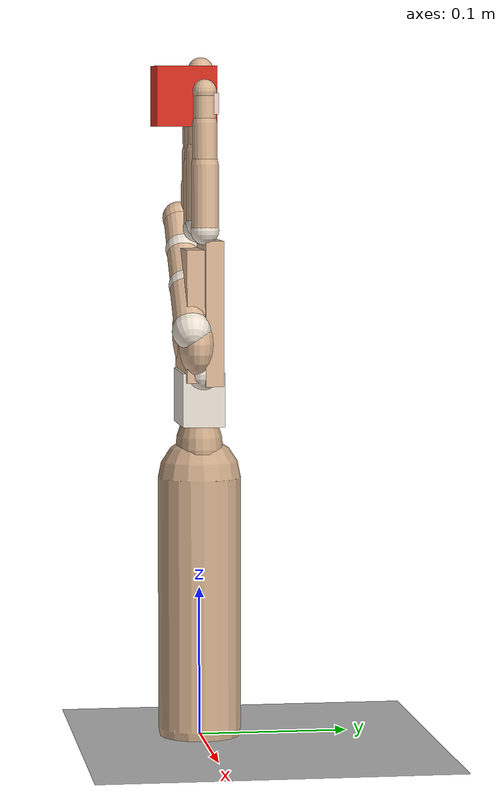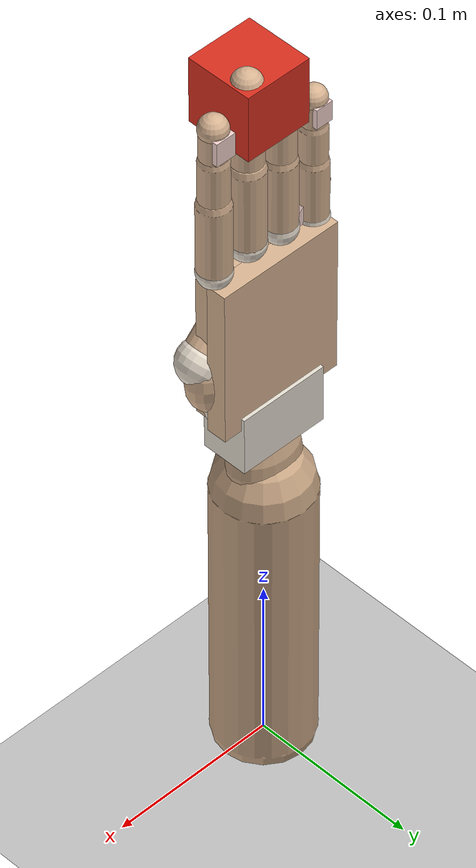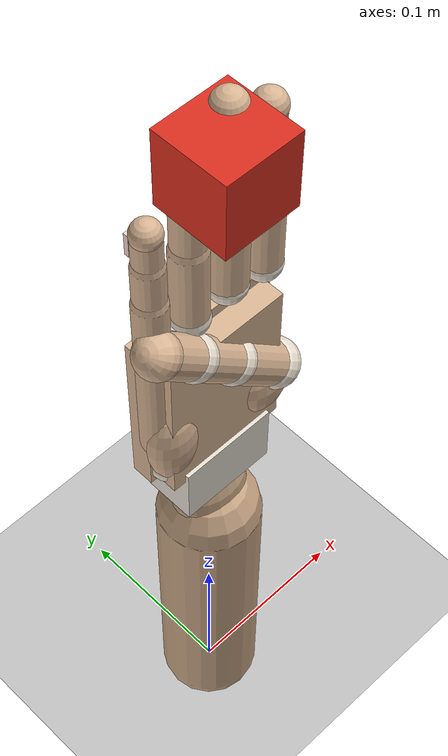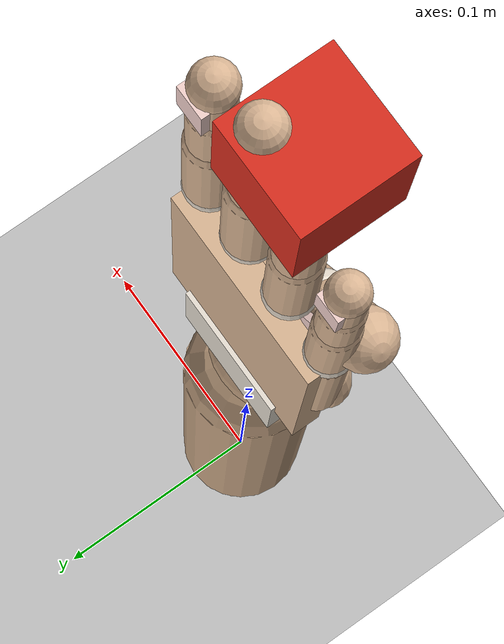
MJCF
<mujoco model="right_human_hand">

  <compiler angle="radian" autolimits="true"/>

  <option cone="elliptic" impratio="10" timestep="0.002" gravity="0 0 -9.81"/>

  <visual>
    <global offwidth="1920" offheight="1080"/>
    <quality shadowsize="4096"/>
    <headlight diffuse="0.6 0.6 0.6" ambient="0.3 0.3 0.3" specular="0.1 0.1 0.1"/>
    <rgba haze="0.15 0.25 0.35 1"/>
  </visual>

  <!-- ===================================================================
       ASSETS
       =================================================================== -->
  <asset>
    <texture name="floor_tex" type="2d" builtin="checker"
             rgb1="0.82 0.82 0.82" rgb2="0.67 0.67 0.67"
             width="512" height="512"/>
    <material name="floor_mat" texture="floor_tex" texrepeat="6 6"
              specular="0.1" shininess="0.05"/>
    <material name="cube_mat"  specular="0.4" shininess="0.3"
              rgba="0.85 0.18 0.12 1"/>
    <material name="skin"         specular="0.12" shininess="0.08"
              rgba="0.847 0.706 0.576 1"/>
    <material name="knuckle"      specular="0.25" shininess="0.15"
              rgba="0.920 0.878 0.820 1"/>
    <material name="nail"         specular="0.45" shininess="0.35"
              rgba="0.950 0.820 0.800 1"/>
    <material name="forearm_skin" specular="0.08" shininess="0.05"
              rgba="0.780 0.647 0.518 1"/>
    <material name="wrist_bone"   specular="0.30" shininess="0.20"
              rgba="0.900 0.870 0.820 1"/>
  </asset>

  <default>
    <default class="right_hand">
      <joint damping="0.1" armature="0.001" frictionloss="0.005"/>
      <geom contype="1" conaffinity="1" solimp="0.9 0.99 0.001" solref="0.01 1"/>

      <!-- WRIST flexion/extension (+/-Y) -->
      <default class="wrist_y">
        <joint axis="0 1 0" range="-1.2217 1.3963" damping="0.5"/>
        <position kp="15" ctrlrange="-1.2217 1.3963" forcerange="-20 20"/>
      </default>
      <!-- WRIST radial/ulnar deviation (+/-X) -->
      <default class="wrist_x">
        <joint axis="1 0 0" range="-0.3491 0.5236" damping="0.5"/>
        <position kp="12" ctrlrange="-0.3491 0.5236" forcerange="-12 12"/>
      </default>

      <!-- THUMB CMC abduction/adduction -->
      <default class="thbase">
        <joint axis="0 0 1" range="-0.5236 0.8727" damping="0.1"/>
        <position kp="2.0" ctrlrange="-0.5236 0.8727" forcerange="-5 5"/>
      </default>
      <!-- THUMB CMC flexion -->
      <default class="thproximal">
        <joint axis="0 1 0" range="0 1.0472" damping="0.1"/>
        <position kp="2.5" ctrlrange="0 1.0472" forcerange="-5 5"/>
      </default>
      <!-- THUMB MCP twist -->
      <default class="thhub">
        <joint axis="1 0 0" range="-0.1745 0.1745" damping="0.05"/>
        <position kp="1.5" ctrlrange="-0.1745 0.1745" forcerange="-3 3"/>
      </default>
      <!-- THUMB MCP flexion -->
      <default class="thmiddle">
        <joint axis="0 1 0" range="-0.2618 1.0472" damping="0.1"/>
        <position kp="3.0" ctrlrange="-0.2618 1.0472" forcerange="-5 5"/>
      </default>
      <!-- THUMB IP flexion -->
      <default class="thdistal">
        <joint axis="0 1 0" range="-0.0873 1.3963" damping="0.08"/>
        <position kp="2.0" ctrlrange="-0.0873 1.3963" forcerange="-4 4"/>
      </default>

      <!-- FINGER MCP abduction/adduction (side spread) -->
      <default class="knuckle">
        <joint axis="1 0 0" range="-0.3491 0.3491" damping="0.05"/>
        <position kp="1.5" ctrlrange="-0.3491 0.3491" forcerange="-3 3"/>
      </default>
      <!-- FINGER MCP flexion/extension -->
      <default class="proximal">
        <joint axis="0 1 0" range="-0.2618 1.5708" damping="0.1"/>
        <position kp="3.0" ctrlrange="-0.2618 1.5708" forcerange="-6 6"/>
      </default>
      <!-- FINGER PIP flexion (also drives DIP via tendon) -->
      <default class="middle_pip">
        <joint axis="0 1 0" range="0 2.0944" damping="0.08"/>
        <position kp="2.5" ctrlrange="0 2.0944" forcerange="-5 5"/>
      </default>
      <!-- FINGER DIP flexion (driven by tendon, not directly actuated) -->
      <default class="middle_dip">
        <joint axis="0 1 0" range="0 1.3963" damping="0.06"/>
      </default>
      <!-- LITTLE FINGER metacarpal arch — axis X flipped for mirrored hand -->
      <default class="metacarpal">
        <joint axis="-0.573576 0 0.819152" range="0 0.6981" damping="0.05"/>
        <position kp="1.5" ctrlrange="0 0.6981" forcerange="-3 3"/>
      </default>
    </default>
  </default>

  <worldbody>

    <!-- LIGHTS -->
    <light name="key"  pos="0.5 -0.5 1.5" dir="-0.3  0.3 -1"
           diffuse="0.8 0.8 0.8" specular="0.3 0.3 0.3" castshadow="true"/>
    <light name="fill" pos="-0.5 0.5 1.0" dir=" 0.3 -0.3 -1"
           diffuse="0.4 0.4 0.5" specular="0 0 0" castshadow="false"/>

    <!-- FLOOR -->
    <geom name="floor" type="plane" size="2 2 0.1"
          material="floor_mat" contype="1" conaffinity="1"/>

    <!-- CUBE — free body, starts just above open palm centre.
         Palm centre is ~z=0.247+0.040=0.287 above world origin;
         cube half-size=0.02 so bottom face at z=0.41 clears the palm.  -->
    <body name="cube" pos="0.0 -0.01 0.43">
      <freejoint name="cube_joint"/>
      <inertial mass="0.05" pos="0 0 0"
                diaginertia="8.33e-06 8.33e-06 8.33e-06"/>
      <geom name="cube_geom" type="box" size="0.020 0.020 0.020"
            material="cube_mat"
            friction="1.5 0.05 0.005"
            solimp="0.95 0.99 0.001" solref="0.008 1"/>
    </body>

    <body name="rh_forearm" childclass="right_hand" pos="0 0 0">
      <inertial mass="3.0" pos="0 0 0.09" diaginertia="0.0138 0.0138 0.00744"/>
      <geom name="forearm_main"    type="capsule" size="0.028 0.085"
            pos="0 0 0.09"  material="forearm_skin"/>
      <geom name="forearm_taper"   type="ellipsoid" size="0.022 0.016 0.025"
            pos="0 0 0.195" material="forearm_skin"/>

      <body name="rh_wrist" pos="0 0 0.213">
        <inertial mass="0.12" pos="0 0 0.016"
                  diaginertia="7.0e-05 4.8e-05 3.8e-05"/>
        <!-- FIX: WRJ2 (flexion) lives on rh_wrist, not on rh_palm -->
        <joint name="rh_WRJ2" class="wrist_y"/>
        <geom name="wrist_block" type="box"    size="0.027 0.014 0.018"
              pos="0 0 0.016" material="wrist_bone"/>
        <geom name="wrist_r"     type="sphere" size="0.011"
              pos="-0.026 0 0.034" material="knuckle"/>
        <geom name="wrist_l"     type="sphere" size="0.011"
              pos=" 0.026 0 0.034" material="knuckle"/>

        <body name="rh_palm" pos="0 0 0.034">
          <!-- Inertia corrected: palm 76mm wide (X), 14mm thick (Y), 96mm tall (Z)
               Ixx=m/12*(Y²+Z²)=0.00027, Iyy=m/12*(X²+Z²)=0.00044, Izz=m/12*(X²+Y²)=0.00017 -->
          <inertial mass="0.35" pos="0 0 0.040"
                    diaginertia="0.00027 0.00044 0.00017"/>
          <!-- FIX: WRJ1 (deviation) lives on rh_palm -->
          <joint name="rh_WRJ1" class="wrist_x"/>
          <!-- Palm slab -->
          <geom name="palm_back"   type="box" size="0.038 0.006 0.048"
                pos="0 0.006 0.040" material="skin"/>
          <geom name="palm_front"  type="box" size="0.034 0.008 0.044"
                pos="0 -0.004 0.038" material="skin"/>
          <!-- Thenar (thumb side) — thumb is on +X for right hand palm-up -->
          <geom name="thenar"      type="ellipsoid" size="0.018 0.012 0.022"
                pos=" 0.028 -0.005 0.020" material="skin"/>
          <!-- Hypothenar (pinky side) — pinky is on -X -->
          <geom name="hypothenar"  type="ellipsoid" size="0.014 0.010 0.026"
                pos="-0.028 -0.005 0.024" material="skin"/>

          <body name="rh_ffknuckle" pos="0.033 0 0.095">
            <inertial mass="0.009" pos="0 0 0"
                      diaginertia="3.5e-07 2.8e-07 2.8e-07"/>
            <joint name="rh_FFJ4" class="knuckle"/>
            <geom name="ff_kn" type="sphere" size="0.0095" material="knuckle"/>
            <body name="rh_ffproximal" pos="0 0 0">
              <inertial mass="0.032" pos="0 0 0.0225"
                        diaginertia="1.1e-05 1.0e-05 2.0e-06"/>
              <joint name="rh_FFJ3" class="proximal"/>
              <geom name="ff_p"   type="capsule" size="0.0092 0.0205"
                    pos="0 0 0.0225" material="skin"/>
              <body name="rh_ffmiddle" pos="0 0 0.045">
                <inertial mass="0.018" pos="0 0 0.0125"
                          diaginertia="2.9e-06 2.8e-06 9.0e-07"/>
                <joint name="rh_FFJ2" class="middle_pip"/>
                <geom name="ff_pip" type="sphere"  size="0.0082" material="knuckle"/>
                <geom name="ff_m"   type="capsule" size="0.0082 0.0120"
                      pos="0 0 0.0135" material="skin"/>
                <body name="rh_ffdistal" pos="0 0 0.027">
                  <inertial mass="0.014" pos="0 0 0.010"
                            diaginertia="1.35e-06 1.20e-06 5.5e-07"/>
                  <joint name="rh_FFJ1" class="middle_dip"/>
                  <geom name="ff_dip" type="sphere"  size="0.0075" material="knuckle"/>
                  <geom name="ff_d"   type="capsule" size="0.0075 0.0085"
                        pos="0 0 0.010" material="skin"/>
                  <geom name="ff_tip" type="sphere"  size="0.0080"
                        pos="0 0 0.019" material="skin"/>
                  <geom name="ff_nail" type="box" size="0.006 0.0015 0.007"
                        pos="0 0.007 0.011" material="nail"/>
                </body>
              </body>
            </body>
          </body>

          <body name="rh_mfknuckle" pos="0.011 0 0.099">
            <inertial mass="0.009" pos="0 0 0"
                      diaginertia="3.5e-07 2.8e-07 2.8e-07"/>
            <joint name="rh_MFJ4" class="knuckle"/>
            <geom name="mf_kn" type="sphere" size="0.0100" material="knuckle"/>
            <body name="rh_mfproximal" pos="0 0 0">
              <inertial mass="0.033" pos="0 0 0.0250"
                        diaginertia="1.2e-05 1.1e-05 2.1e-06"/>
              <joint name="rh_MFJ3" class="proximal"/>
              <geom name="mf_p"   type="capsule" size="0.0098 0.0230"
                    pos="0 0 0.0250" material="skin"/>
              <body name="rh_mfmiddle" pos="0 0 0.050">
                <inertial mass="0.019" pos="0 0 0.0150"
                          diaginertia="3.1e-06 3.0e-06 9.5e-07"/>
                <joint name="rh_MFJ2" class="middle_pip"/>
                <geom name="mf_pip" type="sphere"  size="0.0088" material="knuckle"/>
                <geom name="mf_m"   type="capsule" size="0.0086 0.0135"
                      pos="0 0 0.0150" material="skin"/>
                <body name="rh_mfdistal" pos="0 0 0.030">
                  <inertial mass="0.015" pos="0 0 0.011"
                            diaginertia="1.40e-06 1.25e-06 5.8e-07"/>
                  <joint name="rh_MFJ1" class="middle_dip"/>
                  <geom name="mf_dip" type="sphere"  size="0.0080" material="knuckle"/>
                  <geom name="mf_d"   type="capsule" size="0.0080 0.0095"
                        pos="0 0 0.011" material="skin"/>
                  <geom name="mf_tip" type="sphere"  size="0.0085"
                        pos="0 0 0.021" material="skin"/>
                  <geom name="mf_nail" type="box" size="0.0065 0.0015 0.0075"
                        pos="0 0.007 0.012" material="nail"/>
                </body>
              </body>
            </body>
          </body>

          <body name="rh_rfknuckle" pos="-0.011 0 0.095">
            <inertial mass="0.009" pos="0 0 0"
                      diaginertia="3.5e-07 2.8e-07 2.8e-07"/>
            <joint name="rh_RFJ4" class="knuckle"/>
            <geom name="rf_kn" type="sphere" size="0.0095" material="knuckle"/>
            <body name="rh_rfproximal" pos="0 0 0">
              <inertial mass="0.031" pos="0 0 0.0225"
                        diaginertia="1.05e-05 9.8e-06 1.9e-06"/>
              <joint name="rh_RFJ3" class="proximal"/>
              <geom name="rf_p"   type="capsule" size="0.0090 0.0205"
                    pos="0 0 0.0225" material="skin"/>
              <body name="rh_rfmiddle" pos="0 0 0.045">
                <inertial mass="0.017" pos="0 0 0.0140"
                          diaginertia="2.8e-06 2.7e-06 8.8e-07"/>
                <joint name="rh_RFJ2" class="middle_pip"/>
                <geom name="rf_pip" type="sphere"  size="0.0082" material="knuckle"/>
                <geom name="rf_m"   type="capsule" size="0.0082 0.0125"
                      pos="0 0 0.0140" material="skin"/>
                <body name="rh_rfdistal" pos="0 0 0.028">
                  <inertial mass="0.013" pos="0 0 0.010"
                            diaginertia="1.30e-06 1.15e-06 5.3e-07"/>
                  <joint name="rh_RFJ1" class="middle_dip"/>
                  <geom name="rf_dip" type="sphere"  size="0.0075" material="knuckle"/>
                  <geom name="rf_d"   type="capsule" size="0.0075 0.0085"
                        pos="0 0 0.010" material="skin"/>
                  <geom name="rf_tip" type="sphere"  size="0.0078"
                        pos="0 0 0.019" material="skin"/>
                  <geom name="rf_nail" type="box" size="0.0058 0.0015 0.0068"
                        pos="0 0.007 0.011" material="nail"/>
                </body>
              </body>
            </body>
          </body>

          <body name="rh_lfmetacarpal" pos="-0.033 0 0.021">
            <inertial mass="0.030" pos="0 0 0.040"
                      diaginertia="1.70e-05 1.50e-05 4.50e-06"/>
            <!-- axis X-component flipped to match mirrored hand orientation -->
            <joint name="rh_LFJ5" class="metacarpal"/>
            <geom name="lf_meta" type="capsule" size="0.0080 0.028"
                  pos="0 0 0.032" material="skin"/>
            <body name="rh_lfknuckle" pos="0 0 0.066">
              <inertial mass="0.008" pos="0 0 0"
                        diaginertia="3.2e-07 2.6e-07 2.6e-07"/>
              <joint name="rh_LFJ4" class="knuckle"/>
              <geom name="lf_kn" type="sphere" size="0.0088" material="knuckle"/>
              <body name="rh_lfproximal" pos="0 0 0">
                <inertial mass="0.028" pos="0 0 0.019"
                          diaginertia="9.0e-06 8.5e-06 1.7e-06"/>
                <joint name="rh_LFJ3" class="proximal"/>
                <geom name="lf_p"   type="capsule" size="0.0082 0.0170"
                      pos="0 0 0.019" material="skin"/>
                <body name="rh_lfmiddle" pos="0 0 0.038">
                  <inertial mass="0.015" pos="0 0 0.011"
                            diaginertia="2.4e-06 2.3e-06 7.5e-07"/>
                  <joint name="rh_LFJ2" class="middle_pip"/>
                  <geom name="lf_pip" type="sphere"  size="0.0075" material="knuckle"/>
                  <geom name="lf_m"   type="capsule" size="0.0075 0.0095"
                        pos="0 0 0.011" material="skin"/>
                  <body name="rh_lfdistal" pos="0 0 0.022">
                    <inertial mass="0.012" pos="0 0 0.009"
                              diaginertia="1.10e-06 0.98e-06 4.8e-07"/>
                    <joint name="rh_LFJ1" class="middle_dip"/>
                    <geom name="lf_dip" type="sphere"  size="0.0068" material="knuckle"/>
                    <geom name="lf_d"   type="capsule" size="0.0068 0.0075"
                          pos="0 0 0.009" material="skin"/>
                    <geom name="lf_tip" type="sphere"  size="0.0072"
                          pos="0 0 0.017" material="skin"/>
                    <geom name="lf_nail" type="box" size="0.0052 0.0013 0.0060"
                          pos="0 0.006 0.010" material="nail"/>
                  </body>
                </body>
              </body>
            </body>
          </body>

          <body name="rh_thbase" pos="0.034 -0.009 0.029"
                quat="0.924 0 -0.383 0">
            <inertial mass="0.012" pos="0 0 0"
                      diaginertia="1.8e-07 1.8e-07 1.8e-07"/>
            <joint name="rh_THJ5" class="thbase"/>
            <geom name="th_base" type="sphere" size="0.013" material="knuckle"/>
            <body name="rh_thproximal" pos="0 0 0">
              <inertial mass="0.045" pos="0 0 0.020"
                        diaginertia="1.5e-05 1.5e-05 3.5e-06"/>
              <joint name="rh_THJ4" class="thproximal"/>
              <geom name="th_p"  type="capsule" size="0.0115 0.0180"
                    pos="0 0 0.020" material="skin"/>
              <body name="rh_thhub" pos="0 0 0.040">
                <inertial mass="0.006" pos="0 0 0"
                          diaginertia="1.1e-06 1.1e-06 3.3e-07"/>
                <joint name="rh_THJ3" class="thhub"/>
                <geom name="th_hub" type="sphere" size="0.012" material="knuckle"/>
                <body name="rh_thmiddle" pos="0 0 0">
                  <inertial mass="0.022" pos="0 0 0.017"
                            diaginertia="5.5e-06 5.5e-06 1.30e-06"/>
                  <joint name="rh_THJ2" class="thmiddle"/>
                  <geom name="th_m"   type="capsule" size="0.0108 0.0150"
                        pos="0 0 0.016" material="skin"/>
                  <geom name="th_mkn" type="sphere"  size="0.0115"
                        pos="0 0 0.033" material="knuckle"/>
                  <body name="rh_thdistal" pos="0 0 0.034" quat="1 0 0 0">
                    <inertial mass="0.018" pos="0 0 0.015"
                              diaginertia="2.50e-06 2.40e-06 1.05e-06"/>
                    <joint name="rh_THJ1" class="thdistal"/>
                    <geom name="th_ip"   type="sphere"  size="0.0100" material="knuckle"/>
                    <geom name="th_d"    type="capsule" size="0.0105 0.0130"
                          pos="0 0 0.015" material="skin"/>
                    <geom name="th_tip"  type="sphere"  size="0.0112"
                          pos="0 0 0.028" material="skin"/>
                    <geom name="th_nail" type="box" size="0.0080 0.0015 0.0090"
                          pos="0 0.009 0.015" material="nail"/>
                  </body>
                </body>
              </body>
            </body>
          </body>

        </body><!-- end rh_palm -->
      </body><!-- end rh_wrist -->
    </body><!-- end rh_forearm -->
  </worldbody>

  <contact>
    <!-- wrist/forearm chain -->
    <exclude body1="rh_forearm"    body2="rh_wrist"/>
    <exclude body1="rh_forearm"    body2="rh_palm"/>   <!-- FIX: was missing -->
    <exclude body1="rh_wrist"      body2="rh_palm"/>
    <!-- index -->
    <exclude body1="rh_palm"       body2="rh_ffknuckle"/>
    <exclude body1="rh_ffknuckle"  body2="rh_ffproximal"/>
    <exclude body1="rh_ffproximal" body2="rh_ffmiddle"/>
    <exclude body1="rh_ffmiddle"   body2="rh_ffdistal"/>
    <!-- middle -->
    <exclude body1="rh_palm"       body2="rh_mfknuckle"/>
    <exclude body1="rh_mfknuckle"  body2="rh_mfproximal"/>
    <exclude body1="rh_mfproximal" body2="rh_mfmiddle"/>
    <exclude body1="rh_mfmiddle"   body2="rh_mfdistal"/>
    <!-- ring -->
    <exclude body1="rh_palm"       body2="rh_rfknuckle"/>
    <exclude body1="rh_rfknuckle"  body2="rh_rfproximal"/>
    <exclude body1="rh_rfproximal" body2="rh_rfmiddle"/>
    <exclude body1="rh_rfmiddle"   body2="rh_rfdistal"/>
    <!-- little -->
    <exclude body1="rh_palm"          body2="rh_lfmetacarpal"/>
    <exclude body1="rh_lfmetacarpal"  body2="rh_lfknuckle"/>
    <exclude body1="rh_lfknuckle"     body2="rh_lfproximal"/>
    <exclude body1="rh_lfproximal"    body2="rh_lfmiddle"/>
    <exclude body1="rh_lfmiddle"      body2="rh_lfdistal"/>
    <!-- thumb -->
    <exclude body1="rh_palm"        body2="rh_thbase"/>
    <exclude body1="rh_thbase"      body2="rh_thproximal"/>
    <exclude body1="rh_thproximal"  body2="rh_thhub"/>
    <exclude body1="rh_thhub"       body2="rh_thmiddle"/>
    <exclude body1="rh_thmiddle"    body2="rh_thdistal"/>
    <!-- skip-one exclusions (prevent jam at extreme poses) -->
    <exclude body1="rh_ffknuckle"   body2="rh_ffmiddle"/>
    <exclude body1="rh_mfknuckle"   body2="rh_mfmiddle"/>
    <exclude body1="rh_rfknuckle"   body2="rh_rfmiddle"/>
    <exclude body1="rh_lfknuckle"   body2="rh_lfmiddle"/>
    <!-- FIX: thumb skip-one exclusions were missing -->
    <exclude body1="rh_thbase"      body2="rh_thhub"/>
    <exclude body1="rh_thproximal"  body2="rh_thmiddle"/>
    <exclude body1="rh_thhub"       body2="rh_thdistal"/>
  </contact>

  <tendon>
    <fixed name="rh_FFJ0">
      <joint joint="rh_FFJ2" coef="1"/>
      <joint joint="rh_FFJ1" coef="0.67"/>
    </fixed>
    <fixed name="rh_MFJ0">
      <joint joint="rh_MFJ2" coef="1"/>
      <joint joint="rh_MFJ1" coef="0.67"/>
    </fixed>
    <fixed name="rh_RFJ0">
      <joint joint="rh_RFJ2" coef="1"/>
      <joint joint="rh_RFJ1" coef="0.67"/>
    </fixed>
    <fixed name="rh_LFJ0">
      <joint joint="rh_LFJ2" coef="1"/>
      <joint joint="rh_LFJ1" coef="0.67"/>
    </fixed>
  </tendon>

  <!-- ===================================================================
       ACTUATORS — 20 position-controlled DOF
       =================================================================== -->
  <actuator>
    <!-- Wrist: 2 -->
    <position name="rh_A_WRJ2" joint="rh_WRJ2" class="wrist_y"/>
    <position name="rh_A_WRJ1" joint="rh_WRJ1" class="wrist_x"/>
    <!-- Thumb: 5 -->
    <position name="rh_A_THJ5" joint="rh_THJ5" class="thbase"/>
    <position name="rh_A_THJ4" joint="rh_THJ4" class="thproximal"/>
    <position name="rh_A_THJ3" joint="rh_THJ3" class="thhub"/>
    <position name="rh_A_THJ2" joint="rh_THJ2" class="thmiddle"/>
    <position name="rh_A_THJ1" joint="rh_THJ1" class="thdistal"/>
    <!-- Index: 3 -->
    <position name="rh_A_FFJ4" joint="rh_FFJ4"  class="knuckle"/>
    <position name="rh_A_FFJ3" joint="rh_FFJ3"  class="proximal"/>
    <position name="rh_A_FFJ0" tendon="rh_FFJ0" class="middle_pip"/>
    <!-- Middle: 3 -->
    <position name="rh_A_MFJ4" joint="rh_MFJ4"  class="knuckle"/>
    <position name="rh_A_MFJ3" joint="rh_MFJ3"  class="proximal"/>
    <position name="rh_A_MFJ0" tendon="rh_MFJ0" class="middle_pip"/>
    <!-- Ring: 3 -->
    <position name="rh_A_RFJ4" joint="rh_RFJ4"  class="knuckle"/>
    <position name="rh_A_RFJ3" joint="rh_RFJ3"  class="proximal"/>
    <position name="rh_A_RFJ0" tendon="rh_RFJ0" class="middle_pip"/>
    <!-- Little: 4 -->
    <position name="rh_A_LFJ5" joint="rh_LFJ5"  class="metacarpal"/>
    <position name="rh_A_LFJ4" joint="rh_LFJ4"  class="knuckle"/>
    <position name="rh_A_LFJ3" joint="rh_LFJ3"  class="proximal"/>
    <position name="rh_A_LFJ0" tendon="rh_LFJ0" class="middle_pip"/>
  </actuator>

</mujoco>
